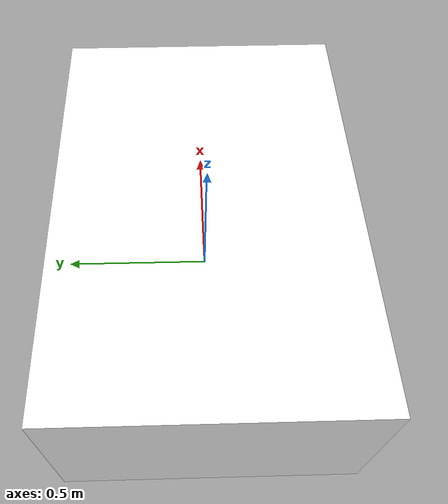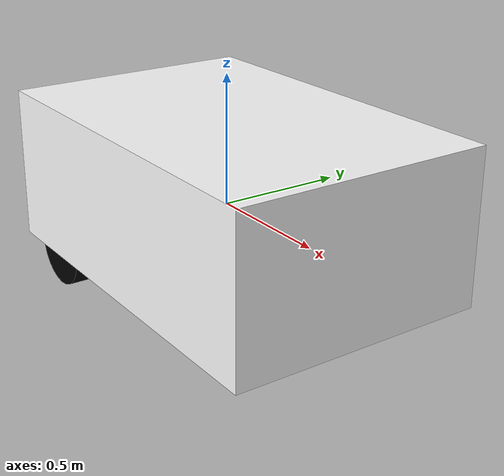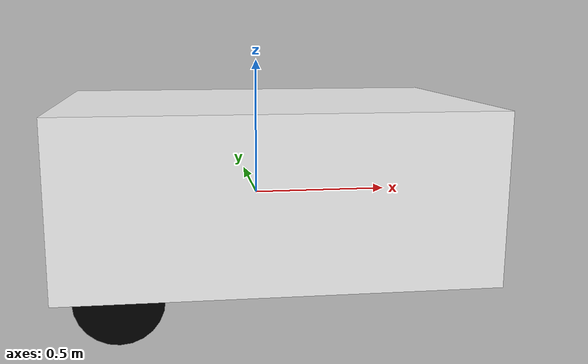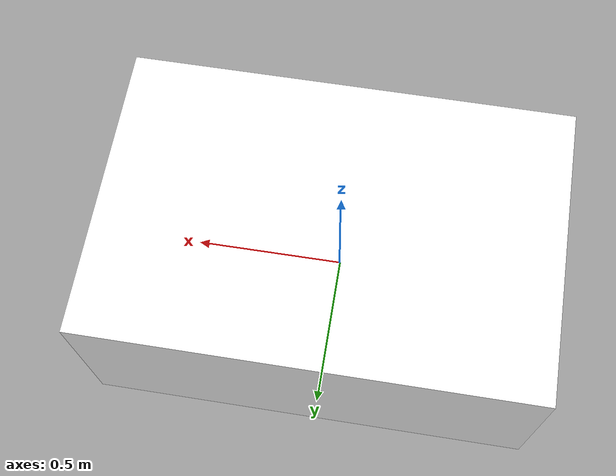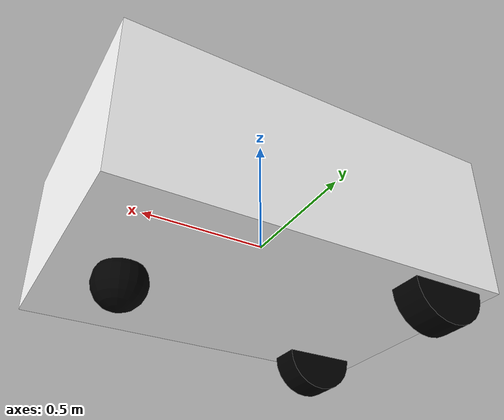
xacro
<?xml version="1.0"?>
<robot xmlns:xacro="http://www.ros.org/wiki/xacro">

    <xacro:include filename="inertial.urdf.xacro"/>

    <material name="white">
        <color rgba="1 1 1 1" />
    </material>

    <material name="orange">
        <color rgba="1 0.3 0.1 1" />
    </material>

    <material name="blue">
        <color rgba="0.2 0.2 1 1" />
    </material>

    <material name="black">
        <color rgba="0 0 0 1" />
    </material>

<!--base link-->
    <link name="base_link">

    </link>
<!--BASE_FOOTPRINT LINK-->
    <joint name="base_footprint_joint" type="fixed">
        <parent link="base_link"/>
        <child link="base_footprint"/>
        <origin xyz="0 0 0" rpy="0 0 0"/>
    </joint>

    <link name="base_footprint">
    </link>

<!--chassis link-->

    <joint name="chassis_joint" type="fixed">
        <parent link="base_link"/>
        <child link="chassis"/>
        <origin xyz="-0.1 0 0"/>

    </joint>

    <link name="chassis">
        <visual>
            <origin xyz="0.135 0 0.052885"/>
            <geometry>
                <box size="1.5 1 0.6"/>
            </geometry>
            <material name="white"/>
        </visual>
        <collision>
            <origin xyz="0.135 0 0.052885"/>
            <geometry>
                <box size="1.5 1 0.6"/>
            </geometry>
        </collision>

        <xacro:inertial_box mass="70" x="0.27" y="0.168" z="0.10577">
            <origin xyz="0.135 0 0.052885" rpy="0 0 0"/>

        </xacro:inertial_box>

    </link>
    <gazebo reference="chassis">
        <material>Gazebo/white</material>
    </gazebo>

<!--Left wheel link-->

    <joint name="left_wheel_joint" type="continuous">
        <parent link="base_link"/>
        <child link="left_wheel"/>
        <origin xyz="-0.5 0.4 -0.25" rpy="-${pi/2} 0 0"/>  <!-- we are rotating the whole bot 90 degrees wrt x axis..-->
        <axis xyz="0 0 1"/>
    </joint>

    <link name="left_wheel">
        <visual>
            <geometry>
                <cylinder radius="0.15" length="0.130"/>
            </geometry>
            <material name="black"/>
        </visual>
        <collision>
            <geometry>
                <sphere radius="0.15"/>
            </geometry>
        </collision>
        <xacro:inertial_cylinder mass="10" length="0.130" radius="0.25">
            <origin xyz = "0 0 0" rpy = "0 0 0 "/>
        </xacro:inertial_cylinder>
        </link>

        <gazebo reference="left_wheel">
            <material>Gazebo/Black</material>
        </gazebo>

<!--Right wheel link-->

    <joint name="right_wheel_joint" type="continuous">
        <parent link="base_link"/>
        <child link="right_wheel"/>
        <origin xyz="-0.5 -0.4 -0.25" rpy="${pi/2} 0 0"/>  <!-- we are rotating the whole bot 90 degrees wrt x axis..-->
        <axis xyz="0 0 -1"/>
    </joint>

    <link name="right_wheel">
        <visual>
            <geometry>
                <cylinder radius="0.15" length="0.130"/>
            </geometry>
            <material name="black"/>
        </visual>
        <collision>
            <geometry>
                <sphere radius="0.15"/>
            </geometry>
            <material name="black"/>
        </collision>
        <xacro:inertial_cylinder mass="10" length="0.130" radius="0.25">
            <origin xyz = "0 0 0" rpy = "0 0 0 "/>
        </xacro:inertial_cylinder>
    </link>

    <gazebo reference="right_wheel">
        <material>Gazebo/Black</material>
    </gazebo>

    <!--Caster wheel -->
    <joint name="caster_wheel_left_joint" type="fixed">
        <parent link="chassis"/>
        <child link="caster_wheel_left"/>
        <origin xyz="0.65 0 -0.3"/>
    </joint>

    <link name="caster_wheel_left">
        <visual>
            <geometry>
                <sphere radius="0.1"/>
            </geometry>
            <material name="black"/>
        </visual>
        <collision>
            <geometry>
                <sphere radius="0.1"/>
            </geometry>
            <material name="black"/>
        </collision>
        <xacro:inertial_sphere mass="5" radius="0.2">
            <origin xyz="0 0 0" rpy="0 0 0"/>
        </xacro:inertial_sphere>
    </link>
    <gazebo reference="caster_wheel_left">
        <material>Gazebo/Black</material>
        <mu1 value="0.01"/>
        <mu2 value="0.01"/>

    </gazebo>

</robot>
